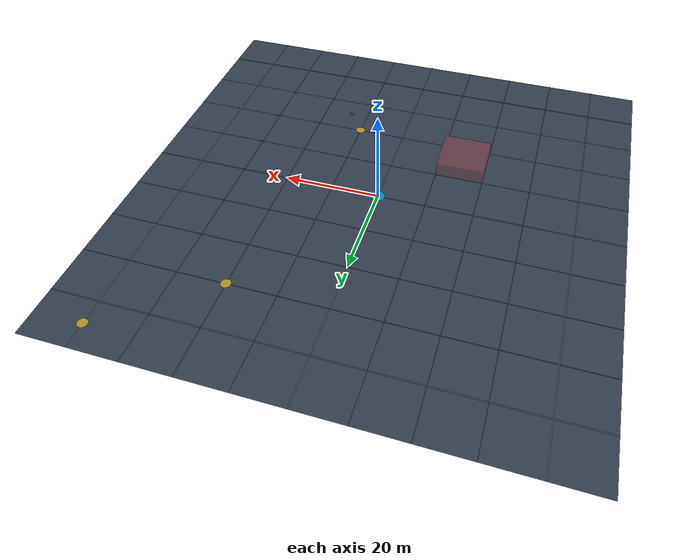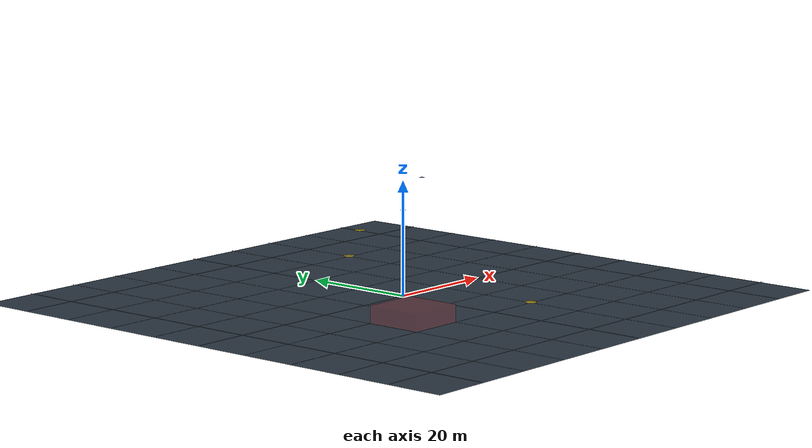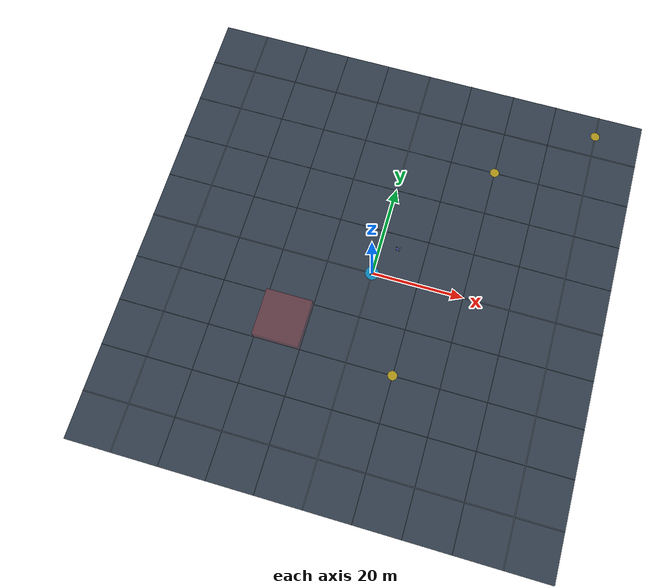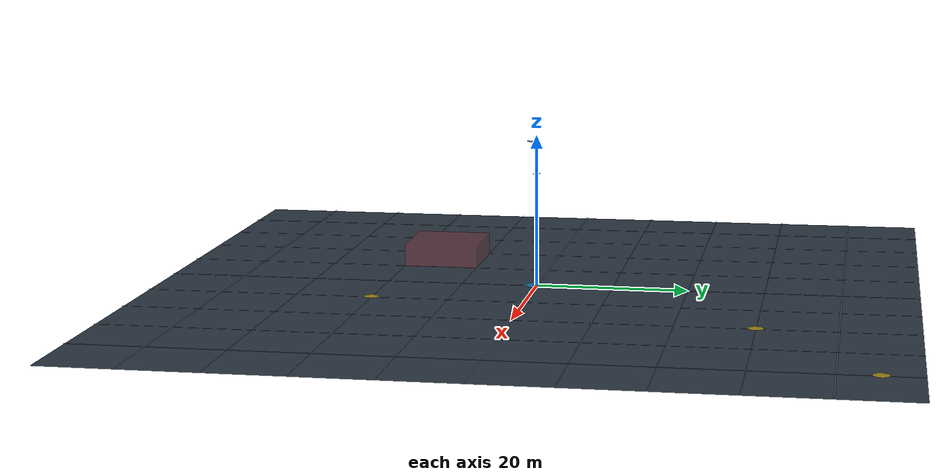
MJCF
<mujoco model="commander_world">
  <!-- Simulation settings -->
  <option timestep="0.002" gravity="0 0 -9.81" integrator="RK4">
    <flag contact="enable" />
  </option>

  <!-- Visual settings -->
  <visual>
    <headlight ambient="0.4 0.4 0.4" diffuse="0.6 0.6 0.6" specular="0.2 0.2 0.2"/>
    <rgba haze="0.15 0.25 0.35 1"/>
    <quality shadowsize="4096"/>
    <map force="0.1" zfar="50"/>
  </visual>

  <!-- Assets: textures, materials -->
  <asset>
    <!-- Ground texture -->
    <texture name="groundplane" type="2d" builtin="checker" rgb1="0.2 0.25 0.3" rgb2="0.15 0.2 0.25" width="512" height="512" mark="edge" markrgb="0.3 0.35 0.4"/>
    <material name="groundplane" texture="groundplane" texrepeat="20 20" texuniform="true" reflectance="0.1"/>

    <!-- Platform materials -->
    <material name="ugv_body" rgba="0.13 0.77 0.37 1"/>  <!-- Green -->
    <material name="ugv_wheel" rgba="0.2 0.2 0.2 1"/>
    <material name="uav_body" rgba="0.39 0.4 0.95 1"/>   <!-- Purple/indigo -->
    <material name="uav_rotor" rgba="0.3 0.3 0.3 0.8"/>

    <!-- No-go zone material (translucent red) -->
    <material name="nogo_zone" rgba="0.9 0.2 0.2 0.25"/>

    <!-- Checkpoint markers -->
    <material name="checkpoint" rgba="1 0.8 0 0.6"/>
    <material name="home_marker" rgba="0 0.7 1 0.6"/>

    <!-- Grid marker material -->
    <material name="grid_marker" rgba="0.5 0.5 0.5 0.3"/>
  </asset>

  <!-- World static geometry -->
  <worldbody>
    <!-- Lighting -->
    <light name="spotlight" pos="0 0 50" dir="0 0 -1" diffuse="0.8 0.8 0.8" specular="0.3 0.3 0.3" cutoff="60"/>

    <!-- Ground plane -->
    <geom name="ground" type="plane" size="50 50 0.1" material="groundplane"/>

    <!-- X-axis markers -->
    <geom name="grid_x_n40" type="box" pos="-40 0 0.01" size="0.1 50 0.01" material="grid_marker"/>
    <geom name="grid_x_n30" type="box" pos="-30 0 0.01" size="0.05 50 0.01" material="grid_marker"/>
    <geom name="grid_x_n20" type="box" pos="-20 0 0.01" size="0.05 50 0.01" material="grid_marker"/>
    <geom name="grid_x_n10" type="box" pos="-10 0 0.01" size="0.05 50 0.01" material="grid_marker"/>
    <geom name="grid_x_0" type="box" pos="0 0 0.01" size="0.1 50 0.01" material="grid_marker"/>
    <geom name="grid_x_p10" type="box" pos="10 0 0.01" size="0.05 50 0.01" material="grid_marker"/>
    <geom name="grid_x_p20" type="box" pos="20 0 0.01" size="0.05 50 0.01" material="grid_marker"/>
    <geom name="grid_x_p30" type="box" pos="30 0 0.01" size="0.05 50 0.01" material="grid_marker"/>
    <geom name="grid_x_p40" type="box" pos="40 0 0.01" size="0.1 50 0.01" material="grid_marker"/>

    <!-- Y-axis markers -->
    <geom name="grid_y_n40" type="box" pos="0 -40 0.01" size="50 0.1 0.01" material="grid_marker"/>
    <geom name="grid_y_n30" type="box" pos="0 -30 0.01" size="50 0.05 0.01" material="grid_marker"/>
    <geom name="grid_y_n20" type="box" pos="0 -20 0.01" size="50 0.05 0.01" material="grid_marker"/>
    <geom name="grid_y_n10" type="box" pos="0 -10 0.01" size="50 0.05 0.01" material="grid_marker"/>
    <geom name="grid_y_0" type="box" pos="0 0 0.01" size="50 0.1 0.01" material="grid_marker"/>
    <geom name="grid_y_p10" type="box" pos="0 10 0.01" size="50 0.05 0.01" material="grid_marker"/>
    <geom name="grid_y_p20" type="box" pos="0 20 0.01" size="50 0.05 0.01" material="grid_marker"/>
    <geom name="grid_y_p30" type="box" pos="0 30 0.01" size="50 0.05 0.01" material="grid_marker"/>
    <geom name="grid_y_p40" type="box" pos="0 40 0.01" size="50 0.1 0.01" material="grid_marker"/>

    <geom name="nogo_r1" type="box" pos="-15 -15 1.5" size="5 5 1.5" material="nogo_zone" contype="0" conaffinity="0"/>

    <!-- Home: Origin -->
    <site name="checkpoint_home" pos="0 0 0.1" size="1.5" type="cylinder" material="home_marker"/>

    <!-- Alpha: (20, 30) -->
    <site name="checkpoint_alpha" pos="20 30 0.1" size="1" type="cylinder" material="checkpoint"/>

    <!-- Bravo: (40, 50) - note: clamped to world bounds -->
    <site name="checkpoint_bravo" pos="40 45 0.1" size="1" type="cylinder" material="checkpoint"/>

    <!-- Charlie: (10, -20) -->
    <site name="checkpoint_charlie" pos="10 -20 0.1" size="1" type="cylinder" material="checkpoint"/>

    <body name="ugv1" pos="0 0 0.25">
      <freejoint name="ugv1_joint"/>
      <geom name="ugv1_body" type="box" size="0.4 0.3 0.15" material="ugv_body" mass="50"/>
      <!-- Wheels (visual only in this simplified model) -->
      <geom name="ugv1_wheel_fl" type="cylinder" pos="0.3 0.35 -0.1" size="0.12 0.05" material="ugv_wheel" euler="90 0 0"/>
      <geom name="ugv1_wheel_fr" type="cylinder" pos="0.3 -0.35 -0.1" size="0.12 0.05" material="ugv_wheel" euler="90 0 0"/>
      <geom name="ugv1_wheel_rl" type="cylinder" pos="-0.3 0.35 -0.1" size="0.12 0.05" material="ugv_wheel" euler="90 0 0"/>
      <geom name="ugv1_wheel_rr" type="cylinder" pos="-0.3 -0.35 -0.1" size="0.12 0.05" material="ugv_wheel" euler="90 0 0"/>
      <site name="ugv1_center" pos="0 0 0.2" size="0.05"/>
    </body>

    <body name="ugv2" pos="5 0 0.25">
      <freejoint name="ugv2_joint"/>
      <geom name="ugv2_body" type="box" size="0.4 0.3 0.15" material="ugv_body" mass="50"/>
      <geom name="ugv2_wheel_fl" type="cylinder" pos="0.3 0.35 -0.1" size="0.12 0.05" material="ugv_wheel" euler="90 0 0"/>
      <geom name="ugv2_wheel_fr" type="cylinder" pos="0.3 -0.35 -0.1" size="0.12 0.05" material="ugv_wheel" euler="90 0 0"/>
      <geom name="ugv2_wheel_rl" type="cylinder" pos="-0.3 0.35 -0.1" size="0.12 0.05" material="ugv_wheel" euler="90 0 0"/>
      <geom name="ugv2_wheel_rr" type="cylinder" pos="-0.3 -0.35 -0.1" size="0.12 0.05" material="ugv_wheel" euler="90 0 0"/>
      <site name="ugv2_center" pos="0 0 0.2" size="0.05"/>
    </body>

    <body name="ugv3" pos="10 0 0.25">
      <freejoint name="ugv3_joint"/>
      <geom name="ugv3_body" type="box" size="0.4 0.3 0.15" material="ugv_body" mass="50"/>
      <geom name="ugv3_wheel_fl" type="cylinder" pos="0.3 0.35 -0.1" size="0.12 0.05" material="ugv_wheel" euler="90 0 0"/>
      <geom name="ugv3_wheel_fr" type="cylinder" pos="0.3 -0.35 -0.1" size="0.12 0.05" material="ugv_wheel" euler="90 0 0"/>
      <geom name="ugv3_wheel_rl" type="cylinder" pos="-0.3 0.35 -0.1" size="0.12 0.05" material="ugv_wheel" euler="90 0 0"/>
      <geom name="ugv3_wheel_rr" type="cylinder" pos="-0.3 -0.35 -0.1" size="0.12 0.05" material="ugv_wheel" euler="90 0 0"/>
      <site name="ugv3_center" pos="0 0 0.2" size="0.05"/>
    </body>

    <body name="uav1" pos="0 0 15">
      <freejoint name="uav1_joint"/>
      <!-- Central body -->
      <geom name="uav1_body" type="box" size="0.15 0.15 0.05" material="uav_body" mass="2"/>
      <!-- Arms -->
      <geom name="uav1_arm1" type="capsule" fromto="0 0 0 0.3 0.3 0" size="0.02" material="uav_body"/>
      <geom name="uav1_arm2" type="capsule" fromto="0 0 0 0.3 -0.3 0" size="0.02" material="uav_body"/>
      <geom name="uav1_arm3" type="capsule" fromto="0 0 0 -0.3 0.3 0" size="0.02" material="uav_body"/>
      <geom name="uav1_arm4" type="capsule" fromto="0 0 0 -0.3 -0.3 0" size="0.02" material="uav_body"/>
      <!-- Rotors -->
      <geom name="uav1_rotor1" type="cylinder" pos="0.3 0.3 0.03" size="0.12 0.01" material="uav_rotor"/>
      <geom name="uav1_rotor2" type="cylinder" pos="0.3 -0.3 0.03" size="0.12 0.01" material="uav_rotor"/>
      <geom name="uav1_rotor3" type="cylinder" pos="-0.3 0.3 0.03" size="0.12 0.01" material="uav_rotor"/>
      <geom name="uav1_rotor4" type="cylinder" pos="-0.3 -0.3 0.03" size="0.12 0.01" material="uav_rotor"/>
      <site name="uav1_center" pos="0 0 0" size="0.05"/>
    </body>

    <body name="uav2" pos="5 0 20">
      <freejoint name="uav2_joint"/>
      <geom name="uav2_body" type="box" size="0.15 0.15 0.05" material="uav_body" mass="2"/>
      <geom name="uav2_arm1" type="capsule" fromto="0 0 0 0.3 0.3 0" size="0.02" material="uav_body"/>
      <geom name="uav2_arm2" type="capsule" fromto="0 0 0 0.3 -0.3 0" size="0.02" material="uav_body"/>
      <geom name="uav2_arm3" type="capsule" fromto="0 0 0 -0.3 0.3 0" size="0.02" material="uav_body"/>
      <geom name="uav2_arm4" type="capsule" fromto="0 0 0 -0.3 -0.3 0" size="0.02" material="uav_body"/>
      <geom name="uav2_rotor1" type="cylinder" pos="0.3 0.3 0.03" size="0.12 0.01" material="uav_rotor"/>
      <geom name="uav2_rotor2" type="cylinder" pos="0.3 -0.3 0.03" size="0.12 0.01" material="uav_rotor"/>
      <geom name="uav2_rotor3" type="cylinder" pos="-0.3 0.3 0.03" size="0.12 0.01" material="uav_rotor"/>
      <geom name="uav2_rotor4" type="cylinder" pos="-0.3 -0.3 0.03" size="0.12 0.01" material="uav_rotor"/>
      <site name="uav2_center" pos="0 0 0" size="0.05"/>
    </body>

  </worldbody>

  <!-- Actuators could be added here for motor control -->
  <actuator>
    <!-- Placeholder: in a full sim, we'd have motor actuators -->
  </actuator>

</mujoco>
